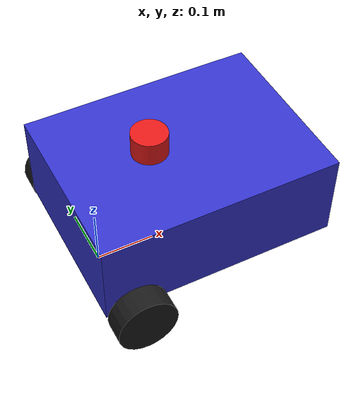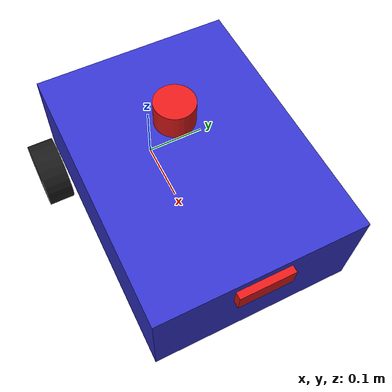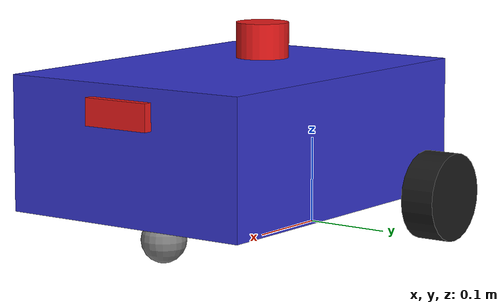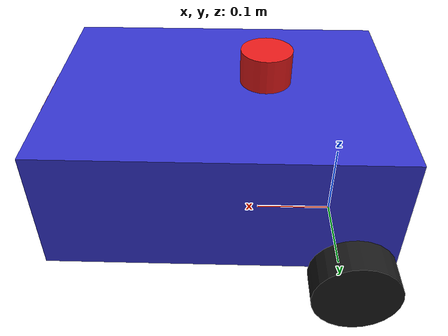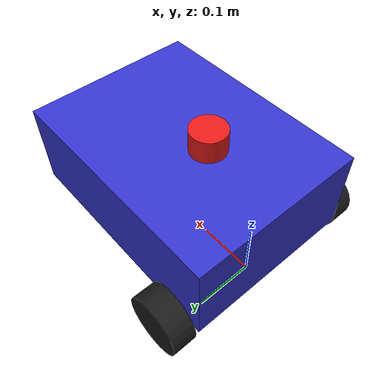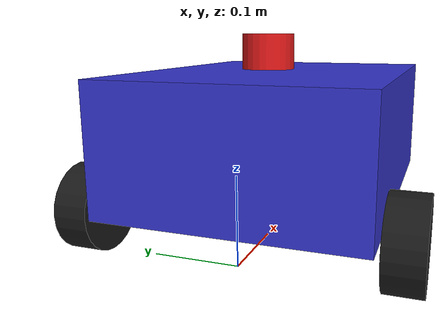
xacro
<?xml version="1.0"?>
<robot xmlns:xacro="http://www.ros.org/wiki/xacro" name="articulated_amr">

    <!-- Include Gazebo Plugins -->
    <xacro:include filename="gazebo_plugins.xacro" />

    <!-- Core Colors -->
    <material name="chassis_color"><color rgba="0.2 0.2 0.8 1"/></material>
    <material name="wheel_color"><color rgba="0.1 0.1 0.1 1"/></material>
    <material name="caster_color"><color rgba="0.5 0.5 0.5 1"/></material>
    <material name="sensor_color"><color rgba="0.9 0.1 0.1 1"/></material>

    <!-- Inertial Macros -->
    <xacro:macro name="inertial_box" params="mass x y z *origin">
        <inertial>
            <xacro:insert_block name="origin"/>
            <mass value="${mass}" />
            <inertia ixx="${(1/12) * mass * (y*y + z*z)}" ixy="0.0" ixz="0.0"
                     iyy="${(1/12) * mass * (x*x + z*z)}" iyz="0.0"
                     izz="${(1/12) * mass * (x*x + y*y)}" />
        </inertial>
    </xacro:macro>

    <xacro:macro name="inertial_cylinder" params="mass length radius *origin">
        <inertial>
            <xacro:insert_block name="origin"/>
            <mass value="${mass}" />
            <inertia ixx="${(1/12) * mass * (3*radius*radius + length*length)}" ixy="0.0" ixz="0.0"
                     iyy="${(1/12) * mass * (3*radius*radius + length*length)}" iyz="0.0"
                     izz="${(1/2) * mass * (radius*radius)}" />
        </inertial>
    </xacro:macro>

    <xacro:macro name="inertial_sphere" params="mass radius *origin">
        <inertial>
            <xacro:insert_block name="origin"/>
            <mass value="${mass}" />
            <inertia ixx="${(2/5) * mass * (radius*radius)}" ixy="0.0" ixz="0.0"
                     iyy="${(2/5) * mass * (radius*radius)}" iyz="0.0"
                     izz="${(2/5) * mass * (radius*radius)}" />
        </inertial>
    </xacro:macro>

    <!-- Base Footprint (Ground Projection for Nav2) -->
    <link name="base_footprint"/>

    <joint name="base_footprint_joint" type="fixed">
        <parent link="base_footprint"/>
        <child link="base_link"/>
        <origin xyz="0 0 0.05" rpy="0 0 0"/>
    </joint>

    <!-- Base Link (Chassis Center) -->
    <link name="base_link">
        <visual>
            <origin xyz="0.15 0 0.075"/>
            <geometry>
                <box size="0.4 0.3 0.15"/>
            </geometry>
            <material name="chassis_color"/>
        </visual>
        <collision>
            <origin xyz="0.15 0 0.075"/>
            <geometry>
                <box size="0.4 0.3 0.15"/>
            </geometry>
        </collision>
        <xacro:inertial_box mass="5.0" x="0.4" y="0.3" z="0.15">
            <origin xyz="0.15 0 0.075" rpy="0 0 0"/>
        </xacro:inertial_box>
    </link>

    <!-- Left Wheel -->
    <joint name="left_wheel_joint" type="continuous">
        <parent link="base_link"/>
        <child link="left_wheel"/>
        <origin xyz="0 0.175 0" rpy="-${pi/2} 0 0"/>
        <axis xyz="0 0 1"/>
    </joint>

    <link name="left_wheel">
        <visual>
            <geometry><cylinder radius="0.05" length="0.04"/></geometry>
            <material name="wheel_color"/>
        </visual>
        <collision>
            <geometry><cylinder radius="0.05" length="0.04"/></geometry>
        </collision>
        <xacro:inertial_cylinder mass="0.5" length="0.04" radius="0.05">
            <origin xyz="0 0 0" rpy="0 0 0"/>
        </xacro:inertial_cylinder>
    </link>

    <!-- Right Wheel -->
    <joint name="right_wheel_joint" type="continuous">
        <parent link="base_link"/>
        <child link="right_wheel"/>
        <origin xyz="0 -0.175 0" rpy="${pi/2} 0 0"/>
        <axis xyz="0 0 -1"/>
    </joint>

    <link name="right_wheel">
        <visual>
            <geometry><cylinder radius="0.05" length="0.04"/></geometry>
            <material name="wheel_color"/>
        </visual>
        <collision>
            <geometry><cylinder radius="0.05" length="0.04"/></geometry>
        </collision>
        <xacro:inertial_cylinder mass="0.5" length="0.04" radius="0.05">
            <origin xyz="0 0 0" rpy="0 0 0"/>
        </xacro:inertial_cylinder>
    </link>

    <!-- Caster Wheel -->
    <joint name="caster_wheel_joint" type="fixed">
        <parent link="base_link"/>
        <child link="caster_wheel"/>
        <origin xyz="0.28 0 -0.025"/>
    </joint>

    <link name="caster_wheel">
        <visual>
            <geometry><sphere radius="0.025"/></geometry>
            <material name="caster_color"/>
        </visual>
        <collision>
            <geometry><sphere radius="0.025"/></geometry>
        </collision>
        <xacro:inertial_sphere mass="0.1" radius="0.025">
            <origin xyz="0 0 0" rpy="0 0 0"/>
        </xacro:inertial_sphere>
    </link>

    <!-- LiDAR Frame -->
    <joint name="laser_joint" type="fixed">
        <parent link="base_link"/>
        <child link="laser_frame"/>
        <origin xyz="0.1 0 0.175" rpy="0 0 0"/>
    </joint>

    <link name="laser_frame">
        <visual>
            <geometry><cylinder radius="0.03" length="0.04"/></geometry>
            <material name="sensor_color"/>
        </visual>
        <collision>
            <geometry><cylinder radius="0.03" length="0.04"/></geometry>
        </collision>
        <xacro:inertial_cylinder mass="0.1" length="0.04" radius="0.03">
            <origin xyz="0 0 0" rpy="0 0 0"/>
        </xacro:inertial_cylinder>
    </link>

    <!-- Camera Frame -->
    <joint name="camera_joint" type="fixed">
        <parent link="base_link"/>
        <child link="camera_frame"/>
        <origin xyz="0.35 0 0.12" rpy="0 0 0"/>
    </joint>

    <link name="camera_frame">
        <visual>
            <geometry><box size="0.02 0.08 0.03"/></geometry>
            <material name="sensor_color"/>
        </visual>
        <collision>
            <geometry><box size="0.02 0.08 0.03"/></geometry>
        </collision>
        <xacro:inertial_box mass="0.05" x="0.02" y="0.08" z="0.03">
            <origin xyz="0 0 0" rpy="0 0 0"/>
        </xacro:inertial_box>
    </link>

    <!-- Optical Joint for Standard Camera Image Frames -->
    <joint name="camera_optical_joint" type="fixed">
        <parent link="camera_frame"/>
        <child link="camera_link_optical"/>
        <origin xyz="0 0 0" rpy="-${pi/2} 0 -${pi/2}"/>
    </joint>
    <link name="camera_link_optical"/>

</robot>
